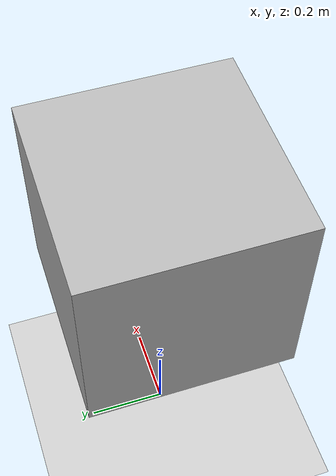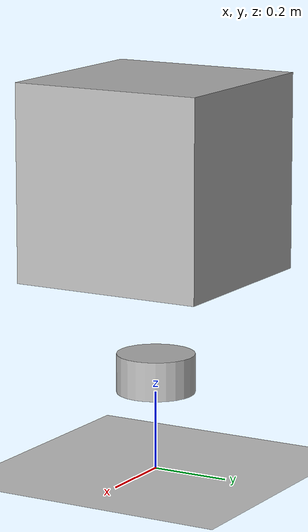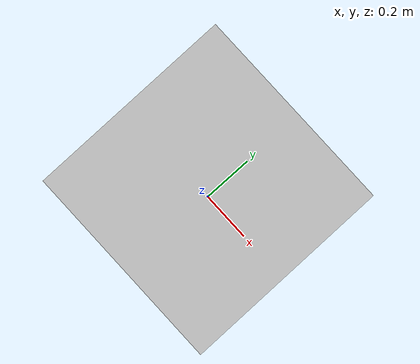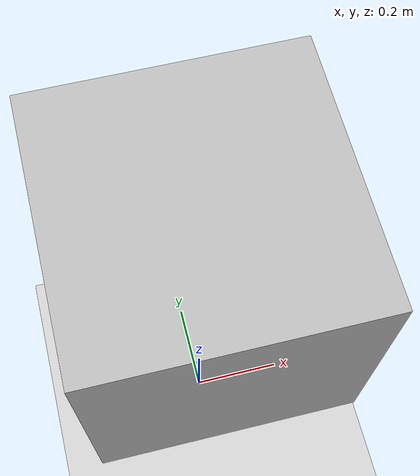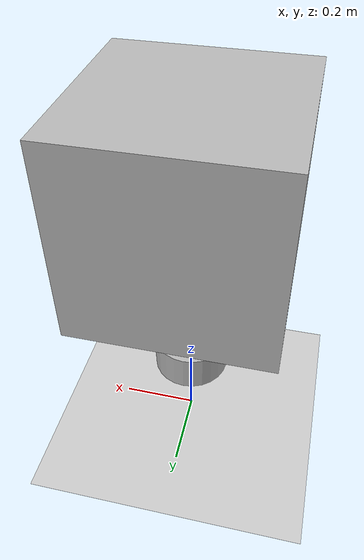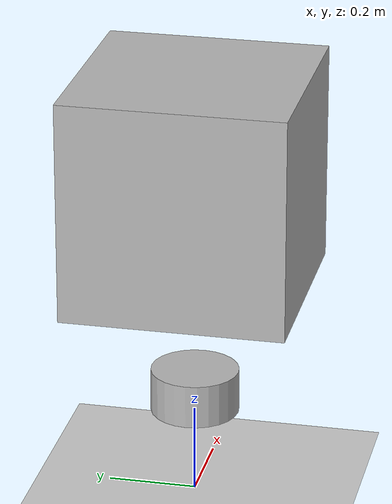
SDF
<?xml version="1.0" encoding="UTF-8" ?>
<sdf version='1.6'>
  <world name='default'>
    <include>
      <uri>model://ground_plane</uri>
    </include>
    <model name='light_model'>
      <static>1</static>
      <link name='cylinder'>
        <pose frame=''>0 0 0.25 0 -0 0</pose>
        <collision name='collision'>
          <geometry>
            <cylinder>
              <radius>0.1</radius>
              <length>0.1</length>
            </cylinder>
          </geometry>
        </collision>
        <visual name='visual'>
          <geometry>
            <cylinder>
              <radius>0.1</radius>
              <length>0.1</length>
            </cylinder>
          </geometry>
        </visual>
       <light name='light_source1' type="directional">
        <diffuse>0.7 0.7 0.7 0</diffuse>
        <direction>-1 -1 -1</direction>
        </light>

      </link>
      <link name='box'>
        <pose frame=''>0 0 0.75 0 -0 0</pose>
        <collision name='collision'>
          <geometry>
            <box>
              <size>0.5 0.5 0.5</size>
            </box>
          </geometry>
        </collision>
        <visual name='visual'>
          <geometry>
            <box>
              <size>0.5 0.5 0.5</size>
            </box>
          </geometry>
        </visual>
       <include>
      <name>stop_light_post_474</name>
      <pose>
      -41.3
      -48.7
      5.01
      0
      0
      -1.57
      </pose>
      <uri>model://stop_light_post</uri>
    </include>

      </link>

      <joint name='joint' type='fixed'>
        <parent>cylinder</parent>
        <child>box</child>
      </joint>
      <plugin name='light_control' filename='libFlashLightPlugin.so'>
        <enable>true</enable>
        <light>
          <id>cylinder/light_source1</id>
          <ambient>1 0 0 1</ambient>
          <diffuse>0 0 0 1</diffuse>
          <emissive>0 1 0 1</emissive>
           <specular>0 0 0 0</specular>
          <duration>0.1</duration>
          <interval>0.4</interval>
          <color>1 0 0 </color>
        </light>

      </plugin>

      <plugin name="keyboard" filename="libKeyboardGUIPlugin.so">
     </plugin>
     <plugin name="TrafficLights" filename="libTrafficLightsGUIPlugin.so">

       <key value="113" model="stop_light_post_475" color="red"/>
       <key value="113" model="stop_light_post_482" color="green"/>
       <key value="113" model="stop_light_post_485" color="green"/>
       <key value="113" model="stop_light_post_479" color="red"/>

       <key value="97" model="stop_light_post_475" color="green"/>
       <key value="97" model="stop_light_post_482" color="red"/>
       <key value="97" model="stop_light_post_485" color="red"/>
       <key value="97" model="stop_light_post_479" color="green"/>

       <key value="119" model="stop_light_post_476" color="red"/>
       <key value="119" model="stop_light_post_483" color="green"/>
       <key value="119" model="stop_light_post_480" color="red"/>

       <key value="115" model="stop_light_post_476" color="green"/>
       <key value="115" model="stop_light_post_483" color="red"/>
       <key value="115" model="stop_light_post_480" color="green"/>

       <key value="101" model="stop_light_post_477" color="red"/>
       <key value="101" model="stop_light_post_486" color="green"/>
       <key value="101" model="stop_light_post_481" color="red"/>

       <key value="100" model="stop_light_post_477" color="green"/>
       <key value="100" model="stop_light_post_486" color="red"/>
       <key value="100" model="stop_light_post_481" color="green"/>

       <key value="114" model="stop_light_post_478" color="red"/>
       <key value="114" model="stop_light_post_484" color="green"/>
       <key value="114" model="stop_light_post_487" color="green"/>

       <key value="102" model="stop_light_post_478" color="green"/>
       <key value="102" model="stop_light_post_484" color="red"/>
       <key value="102" model="stop_light_post_487" color="red"/>

     </plugin>
    </model>
  </world>
</sdf>
